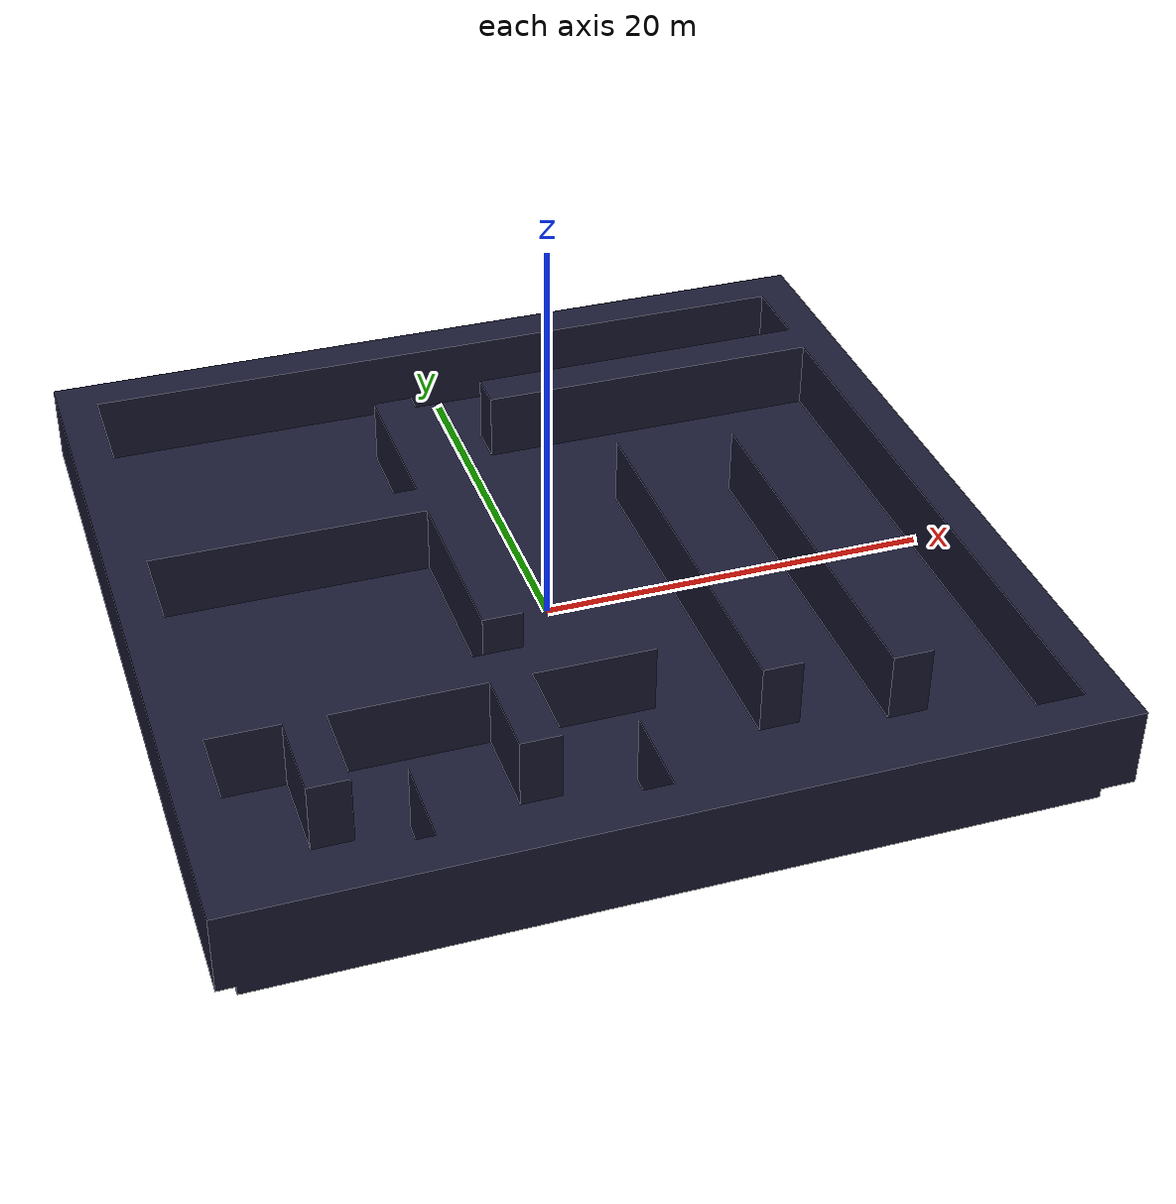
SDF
<?xml version="1.0" ?>
<sdf version="1.5">
  <model name="labyrinth">
    <static>true</static>
    <link name="base_link">
        <visual name="thruster1_visual">
            <geometry>
                <mesh>
                    <scale>1 1 1</scale>
                    <uri>model://labyrinth/meshes/labyrinth.dae</uri>
                </mesh>
            </geometry>
            <material>
                <ambient>0.1 0.1 0.1 1</ambient>
                <diffuse>0.1 0.1 0.2 1</diffuse>
                <specular>0 0 0 0</specular>
                <emissive>0 0 0 1</emissive>
            </material>
        </visual>
        <collision name="collisionModel">
                                      <geometry>
                                          <mesh>
                                              <scale>1 1 1</scale>
                                              <uri>model://labyrinth/meshes/labyrinth.dae</uri>
                                          </mesh>
                                      </geometry>
                        </collision>

    </link>
  </model>
</sdf>
